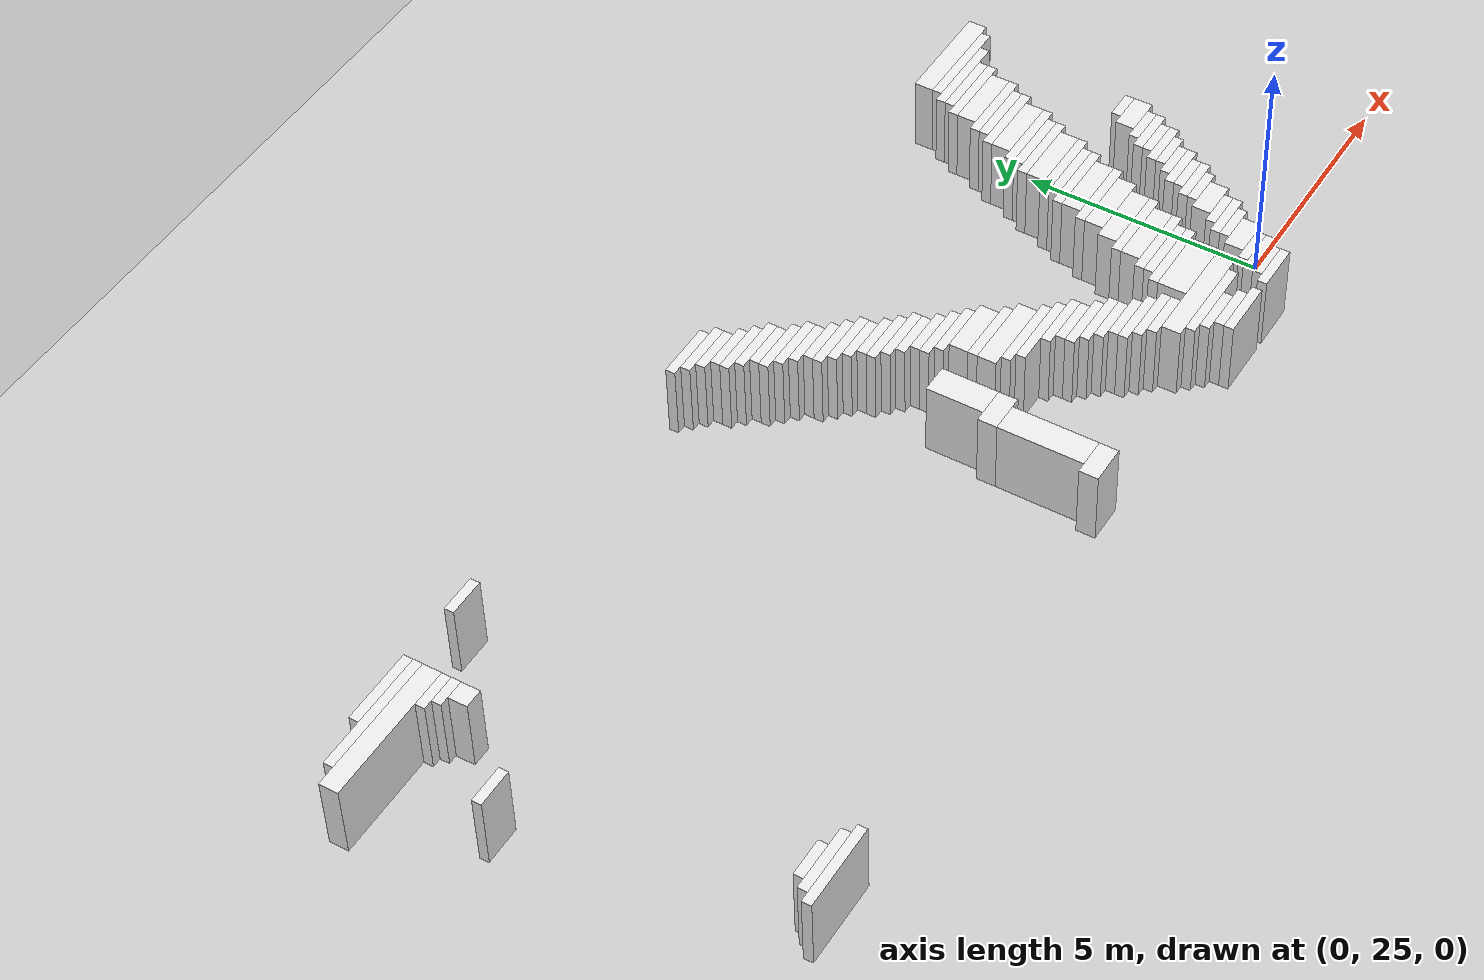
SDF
<sdf version="1.7">
 <world name="default">
  <model name="ground_plane">
   <static>1</static>
   <link name="link">
    <collision name="collision">
     <geometry><plane><normal>0 0 1</normal><size>120 120</size></plane></geometry>
    </collision>
    <visual name="visual">
     <geometry><plane><normal>0 0 1</normal><size>120 120</size></plane></geometry>
     <material>
      <script><uri>file://media/materials/scripts/gazebo.material</uri><name>Gazebo/Grey</name></script>
     </material>
    </visual>
   </link>
  </model>
  <model name="random_complex_03_model">
   <static>1</static>
   <link name="obs_432">
    <pose>-18.2000 32.7000 0.8000 0 0 0</pose>
    <collision name="obs_432_col"><geometry><box><size>1.6000 0.2000 1.6000</size></box></geometry></collision>
    <visual name="obs_432_vis">
     <geometry><box><size>1.6000 0.2000 1.6000</size></box></geometry>
     <material>
      <script><uri>file://media/materials/scripts/gazebo.material</uri><name>Gazebo/White</name></script>
     </material>
    </visual>
   </link>
   <link name="obs_433">
    <pose>-15.8000 32.7000 0.8000 0 0 0</pose>
    <collision name="obs_433_col"><geometry><box><size>0.8000 0.2000 1.6000</size></box></geometry></collision>
    <visual name="obs_433_vis">
     <geometry><box><size>0.8000 0.2000 1.6000</size></box></geometry>
     <material>
      <script><uri>file://media/materials/scripts/gazebo.material</uri><name>Gazebo/White</name></script>
     </material>
    </visual>
   </link>
   <link name="obs_441">
    <pose>-18.7000 32.5000 0.8000 0 0 0</pose>
    <collision name="obs_441_col"><geometry><box><size>2.6000 0.2000 1.6000</size></box></geometry></collision>
    <visual name="obs_441_vis">
     <geometry><box><size>2.6000 0.2000 1.6000</size></box></geometry>
     <material>
      <script><uri>file://media/materials/scripts/gazebo.material</uri><name>Gazebo/White</name></script>
     </material>
    </visual>
   </link>
   <link name="obs_442">
    <pose>-8.8000 32.5000 0.8000 0 0 0</pose>
    <collision name="obs_442_col"><geometry><box><size>1.2000 0.2000 1.6000</size></box></geometry></collision>
    <visual name="obs_442_vis">
     <geometry><box><size>1.2000 0.2000 1.6000</size></box></geometry>
     <material>
      <script><uri>file://media/materials/scripts/gazebo.material</uri><name>Gazebo/White</name></script>
     </material>
    </visual>
   </link>
   <link name="obs_446">
    <pose>0.9000 32.4000 0.8000 0 0 0</pose>
    <collision name="obs_446_col"><geometry><box><size>2.2000 0.4000 1.6000</size></box></geometry></collision>
    <visual name="obs_446_vis">
     <geometry><box><size>2.2000 0.4000 1.6000</size></box></geometry>
     <material>
      <script><uri>file://media/materials/scripts/gazebo.material</uri><name>Gazebo/White</name></script>
     </material>
    </visual>
   </link>
   <link name="obs_449">
    <pose>-8.6000 32.3000 0.8000 0 0 0</pose>
    <collision name="obs_449_col"><geometry><box><size>1.2000 0.2000 1.6000</size></box></geometry></collision>
    <visual name="obs_449_vis">
     <geometry><box><size>1.2000 0.2000 1.6000</size></box></geometry>
     <material>
      <script><uri>file://media/materials/scripts/gazebo.material</uri><name>Gazebo/White</name></script>
     </material>
    </visual>
   </link>
   <link name="obs_453">
    <pose>-18.9000 32.2000 0.8000 0 0 0</pose>
    <collision name="obs_453_col"><geometry><box><size>3.0000 0.4000 1.6000</size></box></geometry></collision>
    <visual name="obs_453_vis">
     <geometry><box><size>3.0000 0.4000 1.6000</size></box></geometry>
     <material>
      <script><uri>file://media/materials/scripts/gazebo.material</uri><name>Gazebo/White</name></script>
     </material>
    </visual>
   </link>
   <link name="obs_456">
    <pose>-8.5000 32.1000 0.8000 0 0 0</pose>
    <collision name="obs_456_col"><geometry><box><size>1.0000 0.2000 1.6000</size></box></geometry></collision>
    <visual name="obs_456_vis">
     <geometry><box><size>1.0000 0.2000 1.6000</size></box></geometry>
     <material>
      <script><uri>file://media/materials/scripts/gazebo.material</uri><name>Gazebo/White</name></script>
     </material>
    </visual>
   </link>
   <link name="obs_457">
    <pose>0.8000 32.1000 0.8000 0 0 0</pose>
    <collision name="obs_457_col"><geometry><box><size>2.0000 0.2000 1.6000</size></box></geometry></collision>
    <visual name="obs_457_vis">
     <geometry><box><size>2.0000 0.2000 1.6000</size></box></geometry>
     <material>
      <script><uri>file://media/materials/scripts/gazebo.material</uri><name>Gazebo/White</name></script>
     </material>
    </visual>
   </link>
   <link name="obs_465">
    <pose>-17.8000 31.9000 0.8000 0 0 0</pose>
    <collision name="obs_465_col"><geometry><box><size>0.8000 0.2000 1.6000</size></box></geometry></collision>
    <visual name="obs_465_vis">
     <geometry><box><size>0.8000 0.2000 1.6000</size></box></geometry>
     <material>
      <script><uri>file://media/materials/scripts/gazebo.material</uri><name>Gazebo/White</name></script>
     </material>
    </visual>
   </link>
   <link name="obs_466">
    <pose>-8.3000 31.9000 0.8000 0 0 0</pose>
    <collision name="obs_466_col"><geometry><box><size>1.0000 0.2000 1.6000</size></box></geometry></collision>
    <visual name="obs_466_vis">
     <geometry><box><size>1.0000 0.2000 1.6000</size></box></geometry>
     <material>
      <script><uri>file://media/materials/scripts/gazebo.material</uri><name>Gazebo/White</name></script>
     </material>
    </visual>
   </link>
   <link name="obs_467">
    <pose>0.5000 31.9000 0.8000 0 0 0</pose>
    <collision name="obs_467_col"><geometry><box><size>1.8000 0.2000 1.6000</size></box></geometry></collision>
    <visual name="obs_467_vis">
     <geometry><box><size>1.8000 0.2000 1.6000</size></box></geometry>
     <material>
      <script><uri>file://media/materials/scripts/gazebo.material</uri><name>Gazebo/White</name></script>
     </material>
    </visual>
   </link>
   <link name="obs_473">
    <pose>-17.7000 31.7000 0.8000 0 0 0</pose>
    <collision name="obs_473_col"><geometry><box><size>0.6000 0.2000 1.6000</size></box></geometry></collision>
    <visual name="obs_473_vis">
     <geometry><box><size>0.6000 0.2000 1.6000</size></box></geometry>
     <material>
      <script><uri>file://media/materials/scripts/gazebo.material</uri><name>Gazebo/White</name></script>
     </material>
    </visual>
   </link>
   <link name="obs_474">
    <pose>-8.2000 31.7000 0.8000 0 0 0</pose>
    <collision name="obs_474_col"><geometry><box><size>1.2000 0.2000 1.6000</size></box></geometry></collision>
    <visual name="obs_474_vis">
     <geometry><box><size>1.2000 0.2000 1.6000</size></box></geometry>
     <material>
      <script><uri>file://media/materials/scripts/gazebo.material</uri><name>Gazebo/White</name></script>
     </material>
    </visual>
   </link>
   <link name="obs_475">
    <pose>0.3000 31.7000 0.8000 0 0 0</pose>
    <collision name="obs_475_col"><geometry><box><size>1.4000 0.2000 1.6000</size></box></geometry></collision>
    <visual name="obs_475_vis">
     <geometry><box><size>1.4000 0.2000 1.6000</size></box></geometry>
     <material>
      <script><uri>file://media/materials/scripts/gazebo.material</uri><name>Gazebo/White</name></script>
     </material>
    </visual>
   </link>
   <link name="obs_481">
    <pose>-8.0000 31.5000 0.8000 0 0 0</pose>
    <collision name="obs_481_col"><geometry><box><size>1.2000 0.2000 1.6000</size></box></geometry></collision>
    <visual name="obs_481_vis">
     <geometry><box><size>1.2000 0.2000 1.6000</size></box></geometry>
     <material>
      <script><uri>file://media/materials/scripts/gazebo.material</uri><name>Gazebo/White</name></script>
     </material>
    </visual>
   </link>
   <link name="obs_482">
    <pose>0.2000 31.5000 0.8000 0 0 0</pose>
    <collision name="obs_482_col"><geometry><box><size>1.6000 0.2000 1.6000</size></box></geometry></collision>
    <visual name="obs_482_vis">
     <geometry><box><size>1.6000 0.2000 1.6000</size></box></geometry>
     <material>
      <script><uri>file://media/materials/scripts/gazebo.material</uri><name>Gazebo/White</name></script>
     </material>
    </visual>
   </link>
   <link name="obs_488">
    <pose>-17.6000 31.4000 0.8000 0 0 0</pose>
    <collision name="obs_488_col"><geometry><box><size>0.4000 0.4000 1.6000</size></box></geometry></collision>
    <visual name="obs_488_vis">
     <geometry><box><size>0.4000 0.4000 1.6000</size></box></geometry>
     <material>
      <script><uri>file://media/materials/scripts/gazebo.material</uri><name>Gazebo/White</name></script>
     </material>
    </visual>
   </link>
   <link name="obs_491">
    <pose>-7.9000 31.3000 0.8000 0 0 0</pose>
    <collision name="obs_491_col"><geometry><box><size>1.0000 0.2000 1.6000</size></box></geometry></collision>
    <visual name="obs_491_vis">
     <geometry><box><size>1.0000 0.2000 1.6000</size></box></geometry>
     <material>
      <script><uri>file://media/materials/scripts/gazebo.material</uri><name>Gazebo/White</name></script>
     </material>
    </visual>
   </link>
   <link name="obs_494">
    <pose>0.1000 31.2000 0.8000 0 0 0</pose>
    <collision name="obs_494_col"><geometry><box><size>1.4000 0.4000 1.6000</size></box></geometry></collision>
    <visual name="obs_494_vis">
     <geometry><box><size>1.4000 0.4000 1.6000</size></box></geometry>
     <material>
      <script><uri>file://media/materials/scripts/gazebo.material</uri><name>Gazebo/White</name></script>
     </material>
    </visual>
   </link>
   <link name="obs_497">
    <pose>-7.8000 31.1000 0.8000 0 0 0</pose>
    <collision name="obs_497_col"><geometry><box><size>1.2000 0.2000 1.6000</size></box></geometry></collision>
    <visual name="obs_497_vis">
     <geometry><box><size>1.2000 0.2000 1.6000</size></box></geometry>
     <material>
      <script><uri>file://media/materials/scripts/gazebo.material</uri><name>Gazebo/White</name></script>
     </material>
    </visual>
   </link>
   <link name="obs_504">
    <pose>-7.6000 30.9000 0.8000 0 0 0</pose>
    <collision name="obs_504_col"><geometry><box><size>1.2000 0.2000 1.6000</size></box></geometry></collision>
    <visual name="obs_504_vis">
     <geometry><box><size>1.2000 0.2000 1.6000</size></box></geometry>
     <material>
      <script><uri>file://media/materials/scripts/gazebo.material</uri><name>Gazebo/White</name></script>
     </material>
    </visual>
   </link>
   <link name="obs_505">
    <pose>0.0000 30.9000 0.8000 0 0 0</pose>
    <collision name="obs_505_col"><geometry><box><size>1.6000 0.2000 1.6000</size></box></geometry></collision>
    <visual name="obs_505_vis">
     <geometry><box><size>1.6000 0.2000 1.6000</size></box></geometry>
     <material>
      <script><uri>file://media/materials/scripts/gazebo.material</uri><name>Gazebo/White</name></script>
     </material>
    </visual>
   </link>
   <link name="obs_511">
    <pose>-7.5000 30.7000 0.8000 0 0 0</pose>
    <collision name="obs_511_col"><geometry><box><size>1.0000 0.2000 1.6000</size></box></geometry></collision>
    <visual name="obs_511_vis">
     <geometry><box><size>1.0000 0.2000 1.6000</size></box></geometry>
     <material>
      <script><uri>file://media/materials/scripts/gazebo.material</uri><name>Gazebo/White</name></script>
     </material>
    </visual>
   </link>
   <link name="obs_512">
    <pose>-0.1000 30.7000 0.8000 0 0 0</pose>
    <collision name="obs_512_col"><geometry><box><size>1.4000 0.2000 1.6000</size></box></geometry></collision>
    <visual name="obs_512_vis">
     <geometry><box><size>1.4000 0.2000 1.6000</size></box></geometry>
     <material>
      <script><uri>file://media/materials/scripts/gazebo.material</uri><name>Gazebo/White</name></script>
     </material>
    </visual>
   </link>
   <link name="obs_518">
    <pose>-7.3000 30.5000 0.8000 0 0 0</pose>
    <collision name="obs_518_col"><geometry><box><size>1.0000 0.2000 1.6000</size></box></geometry></collision>
    <visual name="obs_518_vis">
     <geometry><box><size>1.0000 0.2000 1.6000</size></box></geometry>
     <material>
      <script><uri>file://media/materials/scripts/gazebo.material</uri><name>Gazebo/White</name></script>
     </material>
    </visual>
   </link>
   <link name="obs_519">
    <pose>-0.2000 30.5000 0.8000 0 0 0</pose>
    <collision name="obs_519_col"><geometry><box><size>1.6000 0.2000 1.6000</size></box></geometry></collision>
    <visual name="obs_519_vis">
     <geometry><box><size>1.6000 0.2000 1.6000</size></box></geometry>
     <material>
      <script><uri>file://media/materials/scripts/gazebo.material</uri><name>Gazebo/White</name></script>
     </material>
    </visual>
   </link>
   <link name="obs_526">
    <pose>-7.2000 30.3000 0.8000 0 0 0</pose>
    <collision name="obs_526_col"><geometry><box><size>1.2000 0.2000 1.6000</size></box></geometry></collision>
    <visual name="obs_526_vis">
     <geometry><box><size>1.2000 0.2000 1.6000</size></box></geometry>
     <material>
      <script><uri>file://media/materials/scripts/gazebo.material</uri><name>Gazebo/White</name></script>
     </material>
    </visual>
   </link>
   <link name="obs_530">
    <pose>-0.3000 30.2000 0.8000 0 0 0</pose>
    <collision name="obs_530_col"><geometry><box><size>1.4000 0.4000 1.6000</size></box></geometry></collision>
    <visual name="obs_530_vis">
     <geometry><box><size>1.4000 0.4000 1.6000</size></box></geometry>
     <material>
      <script><uri>file://media/materials/scripts/gazebo.material</uri><name>Gazebo/White</name></script>
     </material>
    </visual>
   </link>
   <link name="obs_535">
    <pose>-7.0000 30.1000 0.8000 0 0 0</pose>
    <collision name="obs_535_col"><geometry><box><size>1.2000 0.2000 1.6000</size></box></geometry></collision>
    <visual name="obs_535_vis">
     <geometry><box><size>1.2000 0.2000 1.6000</size></box></geometry>
     <material>
      <script><uri>file://media/materials/scripts/gazebo.material</uri><name>Gazebo/White</name></script>
     </material>
    </visual>
   </link>
   <link name="obs_541">
    <pose>-19.0000 29.9000 0.8000 0 0 0</pose>
    <collision name="obs_541_col"><geometry><box><size>0.8000 0.2000 1.6000</size></box></geometry></collision>
    <visual name="obs_541_vis">
     <geometry><box><size>0.8000 0.2000 1.6000</size></box></geometry>
     <material>
      <script><uri>file://media/materials/scripts/gazebo.material</uri><name>Gazebo/White</name></script>
     </material>
    </visual>
   </link>
   <link name="obs_542">
    <pose>-6.9000 29.9000 0.8000 0 0 0</pose>
    <collision name="obs_542_col"><geometry><box><size>1.0000 0.2000 1.6000</size></box></geometry></collision>
    <visual name="obs_542_vis">
     <geometry><box><size>1.0000 0.2000 1.6000</size></box></geometry>
     <material>
      <script><uri>file://media/materials/scripts/gazebo.material</uri><name>Gazebo/White</name></script>
     </material>
    </visual>
   </link>
   <link name="obs_543">
    <pose>-0.4000 29.9000 0.8000 0 0 0</pose>
    <collision name="obs_543_col"><geometry><box><size>1.6000 0.2000 1.6000</size></box></geometry></collision>
    <visual name="obs_543_vis">
     <geometry><box><size>1.6000 0.2000 1.6000</size></box></geometry>
     <material>
      <script><uri>file://media/materials/scripts/gazebo.material</uri><name>Gazebo/White</name></script>
     </material>
    </visual>
   </link>
   <link name="obs_552">
    <pose>-6.7000 29.7000 0.8000 0 0 0</pose>
    <collision name="obs_552_col"><geometry><box><size>1.0000 0.2000 1.6000</size></box></geometry></collision>
    <visual name="obs_552_vis">
     <geometry><box><size>1.0000 0.2000 1.6000</size></box></geometry>
     <material>
      <script><uri>file://media/materials/scripts/gazebo.material</uri><name>Gazebo/White</name></script>
     </material>
    </visual>
   </link>
   <link name="obs_553">
    <pose>-0.5000 29.7000 0.8000 0 0 0</pose>
    <collision name="obs_553_col"><geometry><box><size>1.4000 0.2000 1.6000</size></box></geometry></collision>
    <visual name="obs_553_vis">
     <geometry><box><size>1.4000 0.2000 1.6000</size></box></geometry>
     <material>
      <script><uri>file://media/materials/scripts/gazebo.material</uri><name>Gazebo/White</name></script>
     </material>
    </visual>
   </link>
   <link name="obs_561">
    <pose>-6.6000 29.5000 0.8000 0 0 0</pose>
    <collision name="obs_561_col"><geometry><box><size>1.2000 0.2000 1.6000</size></box></geometry></collision>
    <visual name="obs_561_vis">
     <geometry><box><size>1.2000 0.2000 1.6000</size></box></geometry>
     <material>
      <script><uri>file://media/materials/scripts/gazebo.material</uri><name>Gazebo/White</name></script>
     </material>
    </visual>
   </link>
   <link name="obs_562">
    <pose>-0.6000 29.5000 0.8000 0 0 0</pose>
    <collision name="obs_562_col"><geometry><box><size>1.6000 0.2000 1.6000</size></box></geometry></collision>
    <visual name="obs_562_vis">
     <geometry><box><size>1.6000 0.2000 1.6000</size></box></geometry>
     <material>
      <script><uri>file://media/materials/scripts/gazebo.material</uri><name>Gazebo/White</name></script>
     </material>
    </visual>
   </link>
   <link name="obs_568">
    <pose>-6.4000 29.3000 0.8000 0 0 0</pose>
    <collision name="obs_568_col"><geometry><box><size>1.2000 0.2000 1.6000</size></box></geometry></collision>
    <visual name="obs_568_vis">
     <geometry><box><size>1.2000 0.2000 1.6000</size></box></geometry>
     <material>
      <script><uri>file://media/materials/scripts/gazebo.material</uri><name>Gazebo/White</name></script>
     </material>
    </visual>
   </link>
   <link name="obs_574">
    <pose>-0.7000 29.2000 0.8000 0 0 0</pose>
    <collision name="obs_574_col"><geometry><box><size>1.4000 0.4000 1.6000</size></box></geometry></collision>
    <visual name="obs_574_vis">
     <geometry><box><size>1.4000 0.4000 1.6000</size></box></geometry>
     <material>
      <script><uri>file://media/materials/scripts/gazebo.material</uri><name>Gazebo/White</name></script>
     </material>
    </visual>
   </link>
   <link name="obs_577">
    <pose>-6.3000 29.1000 0.8000 0 0 0</pose>
    <collision name="obs_577_col"><geometry><box><size>1.0000 0.2000 1.6000</size></box></geometry></collision>
    <visual name="obs_577_vis">
     <geometry><box><size>1.0000 0.2000 1.6000</size></box></geometry>
     <material>
      <script><uri>file://media/materials/scripts/gazebo.material</uri><name>Gazebo/White</name></script>
     </material>
    </visual>
   </link>
   <link name="obs_583">
    <pose>-6.1000 28.9000 0.8000 0 0 0</pose>
    <collision name="obs_583_col"><geometry><box><size>1.0000 0.2000 1.6000</size></box></geometry></collision>
    <visual name="obs_583_vis">
     <geometry><box><size>1.0000 0.2000 1.6000</size></box></geometry>
     <material>
      <script><uri>file://media/materials/scripts/gazebo.material</uri><name>Gazebo/White</name></script>
     </material>
    </visual>
   </link>
   <link name="obs_584">
    <pose>-0.8000 28.9000 0.8000 0 0 0</pose>
    <collision name="obs_584_col"><geometry><box><size>1.6000 0.2000 1.6000</size></box></geometry></collision>
    <visual name="obs_584_vis">
     <geometry><box><size>1.6000 0.2000 1.6000</size></box></geometry>
     <material>
      <script><uri>file://media/materials/scripts/gazebo.material</uri><name>Gazebo/White</name></script>
     </material>
    </visual>
   </link>
   <link name="obs_590">
    <pose>-6.0000 28.7000 0.8000 0 0 0</pose>
    <collision name="obs_590_col"><geometry><box><size>1.2000 0.2000 1.6000</size></box></geometry></collision>
    <visual name="obs_590_vis">
     <geometry><box><size>1.2000 0.2000 1.6000</size></box></geometry>
     <material>
      <script><uri>file://media/materials/scripts/gazebo.material</uri><name>Gazebo/White</name></script>
     </material>
    </visual>
   </link>
   <link name="obs_591">
    <pose>-0.9000 28.7000 0.8000 0 0 0</pose>
    <collision name="obs_591_col"><geometry><box><size>1.4000 0.2000 1.6000</size></box></geometry></collision>
    <visual name="obs_591_vis">
     <geometry><box><size>1.4000 0.2000 1.6000</size></box></geometry>
     <material>
      <script><uri>file://media/materials/scripts/gazebo.material</uri><name>Gazebo/White</name></script>
     </material>
    </visual>
   </link>
   <link name="obs_592">
    <pose>1.3000 28.7000 0.8000 0 0 0</pose>
    <collision name="obs_592_col"><geometry><box><size>0.6000 0.2000 1.6000</size></box></geometry></collision>
    <visual name="obs_592_vis">
     <geometry><box><size>0.6000 0.2000 1.6000</size></box></geometry>
     <material>
      <script><uri>file://media/materials/scripts/gazebo.material</uri><name>Gazebo/White</name></script>
     </material>
    </visual>
   </link>
   <link name="obs_597">
    <pose>-5.8000 28.5000 0.8000 0 0 0</pose>
    <collision name="obs_597_col"><geometry><box><size>1.2000 0.2000 1.6000</size></box></geometry></collision>
    <visual name="obs_597_vis">
     <geometry><box><size>1.2000 0.2000 1.6000</size></box></geometry>
     <material>
      <script><uri>file://media/materials/scripts/gazebo.material</uri><name>Gazebo/White</name></script>
     </material>
    </visual>
   </link>
   <link name="obs_598">
    <pose>-1.0000 28.5000 0.8000 0 0 0</pose>
    <collision name="obs_598_col"><geometry><box><size>1.6000 0.2000 1.6000</size></box></geometry></collision>
    <visual name="obs_598_vis">
     <geometry><box><size>1.6000 0.2000 1.6000</size></box></geometry>
     <material>
      <script><uri>file://media/materials/scripts/gazebo.material</uri><name>Gazebo/White</name></script>
     </material>
    </visual>
   </link>
   <link name="obs_602">
    <pose>1.2000 28.4000 0.8000 0 0 0</pose>
    <collision name="obs_602_col"><geometry><box><size>0.8000 0.4000 1.6000</size></box></geometry></collision>
    <visual name="obs_602_vis">
     <geometry><box><size>0.8000 0.4000 1.6000</size></box></geometry>
     <material>
      <script><uri>file://media/materials/scripts/gazebo.material</uri><name>Gazebo/White</name></script>
     </material>
    </visual>
   </link>
   <link name="obs_605">
    <pose>-5.6000 28.2000 0.8000 0 0 0</pose>
    <collision name="obs_605_col"><geometry><box><size>1.2000 0.4000 1.6000</size></box></geometry></collision>
    <visual name="obs_605_vis">
     <geometry><box><size>1.2000 0.4000 1.6000</size></box></geometry>
     <material>
      <script><uri>file://media/materials/scripts/gazebo.material</uri><name>Gazebo/White</name></script>
     </material>
    </visual>
   </link>
   <link name="obs_606">
    <pose>-1.1000 28.2000 0.8000 0 0 0</pose>
    <collision name="obs_606_col"><geometry><box><size>1.4000 0.4000 1.6000</size></box></geometry></collision>
    <visual name="obs_606_vis">
     <geometry><box><size>1.4000 0.4000 1.6000</size></box></geometry>
     <material>
      <script><uri>file://media/materials/scripts/gazebo.material</uri><name>Gazebo/White</name></script>
     </material>
    </visual>
   </link>
   <link name="obs_612">
    <pose>1.0000 28.1000 0.8000 0 0 0</pose>
    <collision name="obs_612_col"><geometry><box><size>0.8000 0.2000 1.6000</size></box></geometry></collision>
    <visual name="obs_612_vis">
     <geometry><box><size>0.8000 0.2000 1.6000</size></box></geometry>
     <material>
      <script><uri>file://media/materials/scripts/gazebo.material</uri><name>Gazebo/White</name></script>
     </material>
    </visual>
   </link>
   <link name="obs_616">
    <pose>-5.5000 27.9000 0.8000 0 0 0</pose>
    <collision name="obs_616_col"><geometry><box><size>1.4000 0.2000 1.6000</size></box></geometry></collision>
    <visual name="obs_616_vis">
     <geometry><box><size>1.4000 0.2000 1.6000</size></box></geometry>
     <material>
      <script><uri>file://media/materials/scripts/gazebo.material</uri><name>Gazebo/White</name></script>
     </material>
    </visual>
   </link>
   <link name="obs_617">
    <pose>-1.2000 27.9000 0.8000 0 0 0</pose>
    <collision name="obs_617_col"><geometry><box><size>1.6000 0.2000 1.6000</size></box></geometry></collision>
    <visual name="obs_617_vis">
     <geometry><box><size>1.6000 0.2000 1.6000</size></box></geometry>
     <material>
      <script><uri>file://media/materials/scripts/gazebo.material</uri><name>Gazebo/White</name></script>
     </material>
    </visual>
   </link>
   <link name="obs_618">
    <pose>0.9000 27.9000 0.8000 0 0 0</pose>
    <collision name="obs_618_col"><geometry><box><size>1.0000 0.2000 1.6000</size></box></geometry></collision>
    <visual name="obs_618_vis">
     <geometry><box><size>1.0000 0.2000 1.6000</size></box></geometry>
     <material>
      <script><uri>file://media/materials/scripts/gazebo.material</uri><name>Gazebo/White</name></script>
     </material>
    </visual>
   </link>
   <link name="obs_626">
    <pose>0.8000 27.7000 0.8000 0 0 0</pose>
    <collision name="obs_626_col"><geometry><box><size>0.8000 0.2000 1.6000</size></box></geometry></collision>
    <visual name="obs_626_vis">
     <geometry><box><size>0.8000 0.2000 1.6000</size></box></geometry>
     <material>
      <script><uri>file://media/materials/scripts/gazebo.material</uri><name>Gazebo/White</name></script>
     </material>
    </visual>
   </link>
   <link name="obs_628">
    <pose>-5.4000 27.6000 0.8000 0 0 0</pose>
    <collision name="obs_628_col"><geometry><box><size>1.6000 0.4000 1.6000</size></box></geometry></collision>
    <visual name="obs_628_vis">
     <geometry><box><size>1.6000 0.4000 1.6000</size></box></geometry>
     <material>
      <script><uri>file://media/materials/scripts/gazebo.material</uri><name>Gazebo/White</name></script>
     </material>
    </visual>
   </link>
   <link name="obs_629">
    <pose>-1.3000 27.6000 0.8000 0 0 0</pose>
    <collision name="obs_629_col"><geometry><box><size>1.4000 0.4000 1.6000</size></box></geometry></collision>
    <visual name="obs_629_vis">
     <geometry><box><size>1.4000 0.4000 1.6000</size></box></geometry>
     <material>
      <script><uri>file://media/materials/scripts/gazebo.material</uri><name>Gazebo/White</name></script>
     </material>
    </visual>
   </link>
   <link name="obs_631">
    <pose>0.7000 27.5000 0.8000 0 0 0</pose>
    <collision name="obs_631_col"><geometry><box><size>1.0000 0.2000 1.6000</size></box></geometry></collision>
    <visual name="obs_631_vis">
     <geometry><box><size>1.0000 0.2000 1.6000</size></box></geometry>
     <material>
      <script><uri>file://media/materials/scripts/gazebo.material</uri><name>Gazebo/White</name></script>
     </material>
    </visual>
   </link>
   <link name="obs_637">
    <pose>-5.2000 27.3000 0.8000 0 0 0</pose>
    <collision name="obs_637_col"><geometry><box><size>1.6000 0.2000 1.6000</size></box></geometry></collision>
    <visual name="obs_637_vis">
     <geometry><box><size>1.6000 0.2000 1.6000</size></box></geometry>
     <material>
      <script><uri>file://media/materials/scripts/gazebo.material</uri><name>Gazebo/White</name></script>
     </material>
    </visual>
   </link>
   <link name="obs_638">
    <pose>0.6000 27.3000 0.8000 0 0 0</pose>
    <collision name="obs_638_col"><geometry><box><size>0.8000 0.2000 1.6000</size></box></geometry></collision>
    <visual name="obs_638_vis">
     <geometry><box><size>0.8000 0.2000 1.6000</size></box></geometry>
     <material>
      <script><uri>file://media/materials/scripts/gazebo.material</uri><name>Gazebo/White</name></script>
     </material>
    </visual>
   </link>
   <link name="obs_641">
    <pose>-7.1000 27.6000 0.8000 0 0 0</pose>
    <collision name="obs_641_col"><geometry><box><size>0.6000 1.2000 1.6000</size></box></geometry></collision>
    <visual name="obs_641_vis">
     <geometry><box><size>0.6000 1.2000 1.6000</size></box></geometry>
     <material>
      <script><uri>file://media/materials/scripts/gazebo.material</uri><name>Gazebo/White</name></script>
     </material>
    </visual>
   </link>
   <link name="obs_642">
    <pose>-1.5000 27.2000 0.8000 0 0 0</pose>
    <collision name="obs_642_col"><geometry><box><size>1.4000 0.4000 1.6000</size></box></geometry></collision>
    <visual name="obs_642_vis">
     <geometry><box><size>1.4000 0.4000 1.6000</size></box></geometry>
     <material>
      <script><uri>file://media/materials/scripts/gazebo.material</uri><name>Gazebo/White</name></script>
     </material>
    </visual>
   </link>
   <link name="obs_644">
    <pose>-5.0000 27.1000 0.8000 0 0 0</pose>
    <collision name="obs_644_col"><geometry><box><size>1.6000 0.2000 1.6000</size></box></geometry></collision>
    <visual name="obs_644_vis">
     <geometry><box><size>1.6000 0.2000 1.6000</size></box></geometry>
     <material>
      <script><uri>file://media/materials/scripts/gazebo.material</uri><name>Gazebo/White</name></script>
     </material>
    </visual>
   </link>
   <link name="obs_645">
    <pose>0.4000 27.1000 0.8000 0 0 0</pose>
    <collision name="obs_645_col"><geometry><box><size>0.8000 0.2000 1.6000</size></box></geometry></collision>
    <visual name="obs_645_vis">
     <geometry><box><size>0.8000 0.2000 1.6000</size></box></geometry>
     <material>
      <script><uri>file://media/materials/scripts/gazebo.material</uri><name>Gazebo/White</name></script>
     </material>
    </visual>
   </link>
   <link name="obs_654">
    <pose>-4.6000 26.9000 0.8000 0 0 0</pose>
    <collision name="obs_654_col"><geometry><box><size>1.2000 0.2000 1.6000</size></box></geometry></collision>
    <visual name="obs_654_vis">
     <geometry><box><size>1.2000 0.2000 1.6000</size></box></geometry>
     <material>
      <script><uri>file://media/materials/scripts/gazebo.material</uri><name>Gazebo/White</name></script>
     </material>
    </visual>
   </link>
   <link name="obs_655">
    <pose>-1.6000 26.9000 0.8000 0 0 0</pose>
    <collision name="obs_655_col"><geometry><box><size>1.6000 0.2000 1.6000</size></box></geometry></collision>
    <visual name="obs_655_vis">
     <geometry><box><size>1.6000 0.2000 1.6000</size></box></geometry>
     <material>
      <script><uri>file://media/materials/scripts/gazebo.material</uri><name>Gazebo/White</name></script>
     </material>
    </visual>
   </link>
   <link name="obs_656">
    <pose>0.3000 26.9000 0.8000 0 0 0</pose>
    <collision name="obs_656_col"><geometry><box><size>1.0000 0.2000 1.6000</size></box></geometry></collision>
    <visual name="obs_656_vis">
     <geometry><box><size>1.0000 0.2000 1.6000</size></box></geometry>
     <material>
      <script><uri>file://media/materials/scripts/gazebo.material</uri><name>Gazebo/White</name></script>
     </material>
    </visual>
   </link>
   <link name="obs_660">
    <pose>-7.2000 26.8000 0.8000 0 0 0</pose>
    <collision name="obs_660_col"><geometry><box><size>0.8000 0.4000 1.6000</size></box></geometry></collision>
    <visual name="obs_660_vis">
     <geometry><box><size>0.8000 0.4000 1.6000</size></box></geometry>
     <material>
      <script><uri>file://media/materials/scripts/gazebo.material</uri><name>Gazebo/White</name></script>
     </material>
    </visual>
   </link>
   <link name="obs_665">
    <pose>-4.5000 26.7000 0.8000 0 0 0</pose>
    <collision name="obs_665_col"><geometry><box><size>1.0000 0.2000 1.6000</size></box></geometry></collision>
    <visual name="obs_665_vis">
     <geometry><box><size>1.0000 0.2000 1.6000</size></box></geometry>
     <material>
      <script><uri>file://media/materials/scripts/gazebo.material</uri><name>Gazebo/White</name></script>
     </material>
    </visual>
   </link>
   <link name="obs_666">
    <pose>0.2000 26.7000 0.8000 0 0 0</pose>
    <collision name="obs_666_col"><geometry><box><size>0.8000 0.2000 1.6000</size></box></geometry></collision>
    <visual name="obs_666_vis">
     <geometry><box><size>0.8000 0.2000 1.6000</size></box></geometry>
     <material>
      <script><uri>file://media/materials/scripts/gazebo.material</uri><name>Gazebo/White</name></script>
     </material>
    </visual>
   </link>
   <link name="obs_671">
    <pose>-1.7000 26.6000 0.8000 0 0 0</pose>
    <collision name="obs_671_col"><geometry><box><size>1.4000 0.4000 1.6000</size></box></geometry></collision>
    <visual name="obs_671_vis">
     <geometry><box><size>1.4000 0.4000 1.6000</size></box></geometry>
     <material>
      <script><uri>file://media/materials/scripts/gazebo.material</uri><name>Gazebo/White</name></script>
     </material>
    </visual>
   </link>
   <link name="obs_674">
    <pose>-4.4000 26.5000 0.8000 0 0 0</pose>
    <collision name="obs_674_col"><geometry><box><size>1.2000 0.2000 1.6000</size></box></geometry></collision>
    <visual name="obs_674_vis">
     <geometry><box><size>1.2000 0.2000 1.6000</size></box></geometry>
     <material>
      <script><uri>file://media/materials/scripts/gazebo.material</uri><name>Gazebo/White</name></script>
     </material>
    </visual>
   </link>
   <link name="obs_675">
    <pose>0.1000 26.5000 0.8000 0 0 0</pose>
    <collision name="obs_675_col"><geometry><box><size>1.0000 0.2000 1.6000</size></box></geometry></collision>
    <visual name="obs_675_vis">
     <geometry><box><size>1.0000 0.2000 1.6000</size></box></geometry>
     <material>
      <script><uri>file://media/materials/scripts/gazebo.material</uri><name>Gazebo/White</name></script>
     </material>
    </visual>
   </link>
   <link name="obs_682">
    <pose>-4.2000 26.3000 0.8000 0 0 0</pose>
    <collision name="obs_682_col"><geometry><box><size>1.2000 0.2000 1.6000</size></box></geometry></collision>
    <visual name="obs_682_vis">
     <geometry><box><size>1.2000 0.2000 1.6000</size></box></geometry>
     <material>
      <script><uri>file://media/materials/scripts/gazebo.material</uri><name>Gazebo/White</name></script>
     </material>
    </visual>
   </link>
   <link name="obs_683">
    <pose>-1.8000 26.3000 0.8000 0 0 0</pose>
    <collision name="obs_683_col"><geometry><box><size>1.6000 0.2000 1.6000</size></box></geometry></collision>
    <visual name="obs_683_vis">
     <geometry><box><size>1.6000 0.2000 1.6000</size></box></geometry>
     <material>
      <script><uri>file://media/materials/scripts/gazebo.material</uri><name>Gazebo/White</name></script>
     </material>
    </visual>
   </link>
   <link name="obs_684">
    <pose>0.0000 26.3000 0.8000 0 0 0</pose>
    <collision name="obs_684_col"><geometry><box><size>0.8000 0.2000 1.6000</size></box></geometry></collision>
    <visual name="obs_684_vis">
     <geometry><box><size>0.8000 0.2000 1.6000</size></box></geometry>
     <material>
      <script><uri>file://media/materials/scripts/gazebo.material</uri><name>Gazebo/White</name></script>
     </material>
    </visual>
   </link>
   <link name="obs_689">
    <pose>-4.1000 26.1000 0.8000 0 0 0</pose>
    <collision name="obs_689_col"><geometry><box><size>1.0000 0.2000 1.6000</size></box></geometry></collision>
    <visual name="obs_689_vis">
     <geometry><box><size>1.0000 0.2000 1.6000</size></box></geometry>
     <material>
      <script><uri>file://media/materials/scripts/gazebo.material</uri><name>Gazebo/White</name></script>
     </material>
    </visual>
   </link>
   <link name="obs_690">
    <pose>-1.9000 26.1000 0.8000 0 0 0</pose>
    <collision name="obs_690_col"><geometry><box><size>1.4000 0.2000 1.6000</size></box></geometry></collision>
    <visual name="obs_690_vis">
     <geometry><box><size>1.4000 0.2000 1.6000</size></box></geometry>
     <material>
      <script><uri>file://media/materials/scripts/gazebo.material</uri><name>Gazebo/White</name></script>
     </material>
    </visual>
   </link>
   <link name="obs_694">
    <pose>-0.2000 26.0000 0.8000 0 0 0</pose>
    <collision name="obs_694_col"><geometry><box><size>0.8000 0.4000 1.6000</size></box></geometry></collision>
    <visual name="obs_694_vis">
     <geometry><box><size>0.8000 0.4000 1.6000</size></box></geometry>
     <material>
      <script><uri>file://media/materials/scripts/gazebo.material</uri><name>Gazebo/White</name></script>
     </material>
    </visual>
   </link>
   <link name="obs_697">
    <pose>-3.9000 25.9000 0.8000 0 0 0</pose>
    <collision name="obs_697_col"><geometry><box><size>1.0000 0.2000 1.6000</size></box></geometry></collision>
    <visual name="obs_697_vis">
     <geometry><box><size>1.0000 0.2000 1.6000</size></box></geometry>
     <material>
      <script><uri>file://media/materials/scripts/gazebo.material</uri><name>Gazebo/White</name></script>
     </material>
    </visual>
   </link>
   <link name="obs_698">
    <pose>-2.0000 25.9000 0.8000 0 0 0</pose>
    <collision name="obs_698_col"><geometry><box><size>1.6000 0.2000 1.6000</size></box></geometry></collision>
    <visual name="obs_698_vis">
     <geometry><box><size>1.6000 0.2000 1.6000</size></box></geometry>
     <material>
      <script><uri>file://media/materials/scripts/gazebo.material</uri><name>Gazebo/White</name></script>
     </material>
    </visual>
   </link>
   <link name="obs_703">
    <pose>-3.8000 25.7000 0.8000 0 0 0</pose>
    <collision name="obs_703_col"><geometry><box><size>1.2000 0.2000 1.6000</size></box></geometry></collision>
    <visual name="obs_703_vis">
     <geometry><box><size>1.2000 0.2000 1.6000</size></box></geometry>
     <material>
      <script><uri>file://media/materials/scripts/gazebo.material</uri><name>Gazebo/White</name></script>
     </material>
    </visual>
   </link>
   <link name="obs_704">
    <pose>-0.4000 25.7000 0.8000 0 0 0</pose>
    <collision name="obs_704_col"><geometry><box><size>0.8000 0.2000 1.6000</size></box></geometry></collision>
    <visual name="obs_704_vis">
     <geometry><box><size>0.8000 0.2000 1.6000</size></box></geometry>
     <material>
      <script><uri>file://media/materials/scripts/gazebo.material</uri><name>Gazebo/White</name></script>
     </material>
    </visual>
   </link>
   <link name="obs_709">
    <pose>-3.6000 25.5000 0.8000 0 0 0</pose>
    <collision name="obs_709_col"><geometry><box><size>1.2000 0.2000 1.6000</size></box></geometry></collision>
    <visual name="obs_709_vis">
     <geometry><box><size>1.2000 0.2000 1.6000</size></box></geometry>
     <material>
      <script><uri>file://media/materials/scripts/gazebo.material</uri><name>Gazebo/White</name></script>
     </material>
    </visual>
   </link>
   <link name="obs_710">
    <pose>-0.5000 25.5000 0.8000 0 0 0</pose>
    <collision name="obs_710_col"><geometry><box><size>1.0000 0.2000 1.6000</size></box></geometry></collision>
    <visual name="obs_710_vis">
     <geometry><box><size>1.0000 0.2000 1.6000</size></box></geometry>
     <material>
      <script><uri>file://media/materials/scripts/gazebo.material</uri><name>Gazebo/White</name></script>
     </material>
    </visual>
   </link>
   <link name="obs_714">
    <pose>-2.1000 25.5000 0.8000 0 0 0</pose>
    <collision name="obs_714_col"><geometry><box><size>1.4000 0.6000 1.6000</size></box></geometry></collision>
    <visual name="obs_714_vis">
     <geometry><box><size>1.4000 0.6000 1.6000</size></box></geometry>
     <material>
      <script><uri>file://media/materials/scripts/gazebo.material</uri><name>Gazebo/White</name></script>
     </material>
    </visual>
   </link>
   <link name="obs_717">
    <pose>-3.5000 25.3000 0.8000 0 0 0</pose>
    <collision name="obs_717_col"><geometry><box><size>1.0000 0.2000 1.6000</size></box></geometry></collision>
    <visual name="obs_717_vis">
     <geometry><box><size>1.0000 0.2000 1.6000</size></box></geometry>
     <material>
      <script><uri>file://media/materials/scripts/gazebo.material</uri><name>Gazebo/White</name></script>
     </material>
    </visual>
   </link>
   <link name="obs_718">
    <pose>-0.6000 25.3000 0.8000 0 0 0</pose>
    <collision name="obs_718_col"><geometry><box><size>0.8000 0.2000 1.6000</size></box></geometry></collision>
    <visual name="obs_718_vis">
     <geometry><box><size>0.8000 0.2000 1.6000</size></box></geometry>
     <material>
      <script><uri>file://media/materials/scripts/gazebo.material</uri><name>Gazebo/White</name></script>
     </material>
    </visual>
   </link>
   <link name="obs_728">
    <pose>-7.3000 25.7000 0.8000 0 0 0</pose>
    <collision name="obs_728_col"><geometry><box><size>0.6000 1.8000 1.6000</size></box></geometry></collision>
    <visual name="obs_728_vis">
     <geometry><box><size>0.6000 1.8000 1.6000</size></box></geometry>
     <material>
      <script><uri>file://media/materials/scripts/gazebo.material</uri><name>Gazebo/White</name></script>
     </material>
    </visual>
   </link>
   <link name="obs_731">
    <pose>-2.7000 25.0000 0.8000 0 0 0</pose>
    <collision name="obs_731_col"><geometry><box><size>2.2000 0.4000 1.6000</size></box></geometry></collision>
    <visual name="obs_731_vis">
     <geometry><box><size>2.2000 0.4000 1.6000</size></box></geometry>
     <material>
      <script><uri>file://media/materials/scripts/gazebo.material</uri><name>Gazebo/White</name></script>
     </material>
    </visual>
   </link>
   <link name="obs_732">
    <pose>-0.8000 25.0000 0.8000 0 0 0</pose>
    <collision name="obs_732_col"><geometry><box><size>0.8000 0.4000 1.6000</size></box></geometry></collision>
    <visual name="obs_732_vis">
     <geometry><box><size>0.8000 0.4000 1.6000</size></box></geometry>
     <material>
      <script><uri>file://media/materials/scripts/gazebo.material</uri><name>Gazebo/White</name></script>
     </material>
    </visual>
   </link>
   <link name="obs_740">
    <pose>-2.7000 24.7000 0.8000 0 0 0</pose>
    <collision name="obs_740_col"><geometry><box><size>1.8000 0.2000 1.6000</size></box></geometry></collision>
    <visual name="obs_740_vis">
     <geometry><box><size>1.8000 0.2000 1.6000</size></box></geometry>
     <material>
      <script><uri>file://media/materials/scripts/gazebo.material</uri><name>Gazebo/White</name></script>
     </material>
    </visual>
   </link>
   <link name="obs_741">
    <pose>-1.0000 24.7000 0.8000 0 0 0</pose>
    <collision name="obs_741_col"><geometry><box><size>0.8000 0.2000 1.6000</size></box></geometry></collision>
    <visual name="obs_741_vis">
     <geometry><box><size>0.8000 0.2000 1.6000</size></box></geometry>
     <material>
      <script><uri>file://media/materials/scripts/gazebo.material</uri><name>Gazebo/White</name></script>
     </material>
    </visual>
   </link>
   <link name="obs_746">
    <pose>-7.4000 24.6000 0.8000 0 0 0</pose>
    <collision name="obs_746_col"><geometry><box><size>0.8000 0.4000 1.6000</size></box></geometry></collision>
    <visual name="obs_746_vis">
     <geometry><box><size>0.8000 0.4000 1.6000</size></box></geometry>
     <material>
      <script><uri>file://media/materials/scripts/gazebo.material</uri><name>Gazebo/White</name></script>
     </material>
    </visual>
   </link>
   <link name="obs_748">
    <pose>-17.6000 24.5000 0.8000 0 0 0</pose>
    <collision name="obs_748_col"><geometry><box><size>0.8000 0.2000 1.6000</size></box></geometry></collision>
    <visual name="obs_748_vis">
     <geometry><box><size>0.8000 0.2000 1.6000</size></box></geometry>
     <material>
      <script><uri>file://media/materials/scripts/gazebo.material</uri><name>Gazebo/White</name></script>
     </material>
    </visual>
   </link>
   <link name="obs_749">
    <pose>-2.9000 24.5000 0.8000 0 0 0</pose>
    <collision name="obs_749_col"><geometry><box><size>1.0000 0.2000 1.6000</size></box></geometry></collision>
    <visual name="obs_749_vis">
     <geometry><box><size>1.0000 0.2000 1.6000</size></box></geometry>
     <material>
      <script><uri>file://media/materials/scripts/gazebo.material</uri><name>Gazebo/White</name></script>
     </material>
    </visual>
   </link>
   <link name="obs_750">
    <pose>-1.1000 24.5000 0.8000 0 0 0</pose>
    <collision name="obs_750_col"><geometry><box><size>1.0000 0.2000 1.6000</size></box></geometry></collision>
    <visual name="obs_750_vis">
     <geometry><box><size>1.0000 0.2000 1.6000</size></box></geometry>
     <material>
      <script><uri>file://media/materials/scripts/gazebo.material</uri><name>Gazebo/White</name></script>
     </material>
    </visual>
   </link>
   <link name="obs_755">
    <pose>-17.5000 24.3000 0.8000 0 0 0</pose>
    <collision name="obs_755_col"><geometry><box><size>1.4000 0.2000 1.6000</size></box></geometry></collision>
    <visual name="obs_755_vis">
     <geometry><box><size>1.4000 0.2000 1.6000</size></box></geometry>
     <material>
      <script><uri>file://media/materials/scripts/gazebo.material</uri><name>Gazebo/White</name></script>
     </material>
    </visual>
   </link>
   <link name="obs_756">
    <pose>-2.7000 24.3000 0.8000 0 0 0</pose>
    <collision name="obs_756_col"><geometry><box><size>1.0000 0.2000 1.6000</size></box></geometry></collision>
    <visual name="obs_756_vis">
     <geometry><box><size>1.0000 0.2000 1.6000</size></box></geometry>
     <material>
      <script><uri>file://media/materials/scripts/gazebo.material</uri><name>Gazebo/White</name></script>
     </material>
    </visual>
   </link>
   <link name="obs_757">
    <pose>-1.2000 24.3000 0.8000 0 0 0</pose>
    <collision name="obs_757_col"><geometry><box><size>0.8000 0.2000 1.6000</size></box></geometry></collision>
    <visual name="obs_757_vis">
     <geometry><box><size>0.8000 0.2000 1.6000</size></box></geometry>
     <material>
      <script><uri>file://media/materials/scripts/gazebo.material</uri><name>Gazebo/White</name></script>
     </material>
    </visual>
   </link>
   <link name="obs_762">
    <pose>-17.5000 24.1000 0.8000 0 0 0</pose>
    <collision name="obs_762_col"><geometry><box><size>1.8000 0.2000 1.6000</size></box></geometry></collision>
    <visual name="obs_762_vis">
     <geometry><box><size>1.8000 0.2000 1.6000</size></box></geometry>
     <material>
      <script><uri>file://media/materials/scripts/gazebo.material</uri><name>Gazebo/White</name></script>
     </material>
    </visual>
   </link>
   <link name="obs_763">
    <pose>-2.6000 24.1000 0.8000 0 0 0</pose>
    <collision name="obs_763_col"><geometry><box><size>1.2000 0.2000 1.6000</size></box></geometry></collision>
    <visual name="obs_763_vis">
     <geometry><box><size>1.2000 0.2000 1.6000</size></box></geometry>
     <material>
      <script><uri>file://media/materials/scripts/gazebo.material</uri><name>Gazebo/White</name></script>
     </material>
    </visual>
   </link>
   <link name="obs_764">
    <pose>-1.3000 24.1000 0.8000 0 0 0</pose>
    <collision name="obs_764_col"><geometry><box><size>1.0000 0.2000 1.6000</size></box></geometry></collision>
    <visual name="obs_764_vis">
     <geometry><box><size>1.0000 0.2000 1.6000</size></box></geometry>
     <material>
      <script><uri>file://media/materials/scripts/gazebo.material</uri><name>Gazebo/White</name></script>
     </material>
    </visual>
   </link>
  </model>
 </world>
</sdf>
